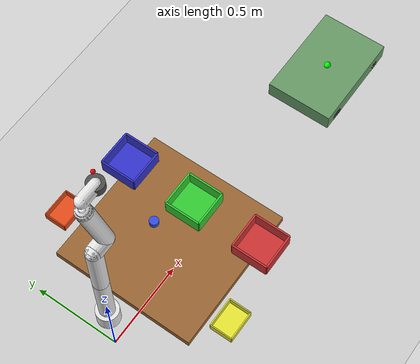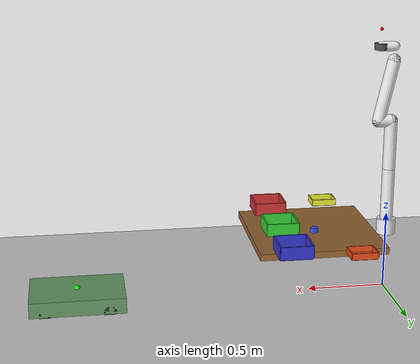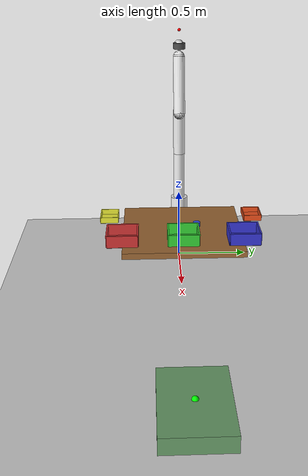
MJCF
<!--
  S1 Mixed Fleet Pick scene for PSL-Bench.
  Panda arm + AMR mobile base (2-DOF planar) + 3 bins + QA tray + isolation tray + blue gear.
  Frame convention: z-up, SI units (metres, radians, kg).
-->
<mujoco model="s1_mixed_fleet_pick">
  <option timestep="0.002" gravity="0 0 -9.81"/>
  <compiler angle="radian"/>

  <default>
    <joint damping="1.0" armature="0.1"/>
    <geom condim="4" friction="1 0.5 0.01"/>
  </default>

  <worldbody>
    <!-- Ground plane -->
    <geom name="floor" type="plane" size="5 5 0.1" rgba="0.8 0.8 0.8 1"/>

    <!-- Table for Panda arm -->
    <body name="table" pos="0.5 0 0.4">
      <geom name="table_top" type="box" size="0.4 0.4 0.02" rgba="0.6 0.4 0.2 1" mass="10"/>
    </body>

    <!-- Panda arm base -->
    <body name="panda_link0" pos="0 0 0.42">
      <geom name="link0_geom" type="cylinder" size="0.06 0.05" rgba="0.9 0.9 0.9 1" mass="2.0"/>
      <body name="panda_link1" pos="0 0 0.05">
        <joint name="joint_0" type="hinge" axis="0 0 1" range="-2.8973 2.8973" damping="10"/>
        <geom name="link1_geom" type="capsule" fromto="0 0 0 0 0 0.333" size="0.04" rgba="0.9 0.9 0.9 1" mass="2.0"/>
        <body name="panda_link2" pos="0 0 0.333">
          <joint name="joint_1" type="hinge" axis="0 1 0" range="-1.7628 1.7628" damping="10"/>
          <geom name="link2_geom" type="capsule" fromto="0 0 0 0 0 0.316" size="0.04" rgba="0.9 0.9 0.9 1" mass="2.0"/>
          <body name="panda_link3" pos="0 0 0.316">
            <joint name="joint_2" type="hinge" axis="0 0 1" range="-2.8973 2.8973" damping="10"/>
            <geom name="link3_geom" type="capsule" fromto="0 0 0 0.0825 0 0" size="0.04" rgba="0.9 0.9 0.9 1" mass="2.0"/>
            <body name="panda_link4" pos="0.0825 0 0">
              <joint name="joint_3" type="hinge" axis="0 -1 0" range="-3.0718 -0.0698" damping="10"/>
              <geom name="link4_geom" type="capsule" fromto="0 0 0 -0.0825 0 0.384" size="0.04" rgba="0.9 0.9 0.9 1" mass="2.0"/>
              <body name="panda_link5" pos="-0.0825 0 0.384">
                <joint name="joint_4" type="hinge" axis="0 0 1" range="-2.8973 2.8973" damping="10"/>
                <geom name="link5_geom" type="sphere" size="0.04" rgba="0.9 0.9 0.9 1" mass="1.0"/>
                <body name="panda_link6" pos="0 0 0.088">
                  <joint name="joint_5" type="hinge" axis="0 1 0" range="-0.0175 3.7525" damping="5"/>
                  <geom name="link6_geom" type="capsule" fromto="0 0 0 0.088 0 0" size="0.03" rgba="0.9 0.9 0.9 1" mass="1.0"/>
                  <body name="panda_link7" pos="0.088 0 0">
                    <joint name="joint_6" type="hinge" axis="0 0 1" range="-2.8973 2.8973" damping="2"/>
                    <geom name="link7_geom" type="cylinder" size="0.04 0.02" rgba="0.3 0.3 0.3 1" mass="0.5"/>
                    <site name="ee_site" pos="0 0 0.107" size="0.01" rgba="1 0 0 1"/>
                  </body>
                </body>
              </body>
            </body>
          </body>
        </body>
      </body>
    </body>

    <!-- AMR mobile base (2-DOF planar + yaw) -->
    <body name="amr_base_x" pos="2.0 0 0.05">
      <geom type="sphere" size="0.001" mass="1" rgba="0 0 0 0"/>
      <joint name="amr_slide_x" type="slide" axis="1 0 0" range="-5 5" damping="50"/>
      <body name="amr_base_y">
        <geom type="sphere" size="0.001" mass="1" rgba="0 0 0 0"/>
      <joint name="amr_slide_y" type="slide" axis="0 1 0" range="-5 5" damping="50"/>
        <body name="amr_base_yaw">
          <joint name="amr_hinge_yaw" type="hinge" axis="0 0 1" damping="20"/>
          <geom name="amr_chassis" type="box" size="0.3 0.2 0.05" rgba="0.4 0.6 0.4 1" mass="20"/>
          <geom name="amr_wheel_fl" type="cylinder" pos="0.2 0.18 -0.04" euler="1.5708 0 0" size="0.04 0.02" rgba="0.2 0.2 0.2 1" mass="0.5"/>
          <geom name="amr_wheel_fr" type="cylinder" pos="0.2 -0.18 -0.04" euler="1.5708 0 0" size="0.04 0.02" rgba="0.2 0.2 0.2 1" mass="0.5"/>
          <geom name="amr_wheel_rl" type="cylinder" pos="-0.2 0.18 -0.04" euler="1.5708 0 0" size="0.04 0.02" rgba="0.2 0.2 0.2 1" mass="0.5"/>
          <geom name="amr_wheel_rr" type="cylinder" pos="-0.2 -0.18 -0.04" euler="1.5708 0 0" size="0.04 0.02" rgba="0.2 0.2 0.2 1" mass="0.5"/>
          <site name="amr_center" pos="0 0 0.05" size="0.02" rgba="0 1 0 1"/>
        </body>
      </body>
    </body>

    <!-- Bin A -->
    <body name="bin_a" pos="0.7 -0.4 0.42">
      <geom name="bin_a_base" type="box" size="0.1 0.1 0.005" rgba="0.8 0.2 0.2 1" mass="0.5"/>
      <geom name="bin_a_wall_f" type="box" pos="0.1 0 0.04" size="0.005 0.1 0.04" rgba="0.8 0.2 0.2 1" mass="0.1"/>
      <geom name="bin_a_wall_b" type="box" pos="-0.1 0 0.04" size="0.005 0.1 0.04" rgba="0.8 0.2 0.2 1" mass="0.1"/>
      <geom name="bin_a_wall_l" type="box" pos="0 0.1 0.04" size="0.1 0.005 0.04" rgba="0.8 0.2 0.2 1" mass="0.1"/>
      <geom name="bin_a_wall_r" type="box" pos="0 -0.1 0.04" size="0.1 0.005 0.04" rgba="0.8 0.2 0.2 1" mass="0.1"/>
    </body>

    <!-- Bin B -->
    <body name="bin_b" pos="0.7 0.0 0.42">
      <geom name="bin_b_base" type="box" size="0.1 0.1 0.005" rgba="0.2 0.8 0.2 1" mass="0.5"/>
      <geom name="bin_b_wall_f" type="box" pos="0.1 0 0.04" size="0.005 0.1 0.04" rgba="0.2 0.8 0.2 1" mass="0.1"/>
      <geom name="bin_b_wall_b" type="box" pos="-0.1 0 0.04" size="0.005 0.1 0.04" rgba="0.2 0.8 0.2 1" mass="0.1"/>
      <geom name="bin_b_wall_l" type="box" pos="0 0.1 0.04" size="0.1 0.005 0.04" rgba="0.2 0.8 0.2 1" mass="0.1"/>
      <geom name="bin_b_wall_r" type="box" pos="0 -0.1 0.04" size="0.1 0.005 0.04" rgba="0.2 0.8 0.2 1" mass="0.1"/>
    </body>

    <!-- Bin C -->
    <body name="bin_c" pos="0.7 0.4 0.42">
      <geom name="bin_c_base" type="box" size="0.1 0.1 0.005" rgba="0.2 0.2 0.8 1" mass="0.5"/>
      <geom name="bin_c_wall_f" type="box" pos="0.1 0 0.04" size="0.005 0.1 0.04" rgba="0.2 0.2 0.8 1" mass="0.1"/>
      <geom name="bin_c_wall_b" type="box" pos="-0.1 0 0.04" size="0.005 0.1 0.04" rgba="0.2 0.2 0.8 1" mass="0.1"/>
      <geom name="bin_c_wall_l" type="box" pos="0 0.1 0.04" size="0.1 0.005 0.04" rgba="0.2 0.2 0.8 1" mass="0.1"/>
      <geom name="bin_c_wall_r" type="box" pos="0 -0.1 0.04" size="0.1 0.005 0.04" rgba="0.2 0.2 0.8 1" mass="0.1"/>
    </body>

    <!-- QA tray -->
    <body name="qa_tray" pos="0.3 -0.5 0.42">
      <geom name="qa_tray_base" type="box" size="0.08 0.06 0.003" rgba="0.9 0.9 0.2 1" mass="0.3"/>
      <geom name="qa_tray_wall_f" type="box" pos="0.08 0 0.02" size="0.003 0.06 0.02" rgba="0.9 0.9 0.2 1" mass="0.05"/>
      <geom name="qa_tray_wall_b" type="box" pos="-0.08 0 0.02" size="0.003 0.06 0.02" rgba="0.9 0.9 0.2 1" mass="0.05"/>
      <geom name="qa_tray_wall_l" type="box" pos="0 0.06 0.02" size="0.08 0.003 0.02" rgba="0.9 0.9 0.2 1" mass="0.05"/>
      <geom name="qa_tray_wall_r" type="box" pos="0 -0.06 0.02" size="0.08 0.003 0.02" rgba="0.9 0.9 0.2 1" mass="0.05"/>
    </body>

    <!-- Isolation tray -->
    <body name="isolation_tray" pos="0.3 0.5 0.42">
      <geom name="iso_tray_base" type="box" size="0.08 0.06 0.003" rgba="0.9 0.3 0.1 1" mass="0.3"/>
      <geom name="iso_tray_wall_f" type="box" pos="0.08 0 0.02" size="0.003 0.06 0.02" rgba="0.9 0.3 0.1 1" mass="0.05"/>
      <geom name="iso_tray_wall_b" type="box" pos="-0.08 0 0.02" size="0.003 0.06 0.02" rgba="0.9 0.3 0.1 1" mass="0.05"/>
      <geom name="iso_tray_wall_l" type="box" pos="0 0.06 0.02" size="0.08 0.003 0.02" rgba="0.9 0.3 0.1 1" mass="0.05"/>
      <geom name="iso_tray_wall_r" type="box" pos="0 -0.06 0.02" size="0.08 0.003 0.02" rgba="0.9 0.3 0.1 1" mass="0.05"/>
    </body>

    <!-- Blue gear (graspable) -->
    <body name="blue_gear" pos="0.5 0.1 0.45">
      <freejoint name="gear_free"/>
      <geom name="gear_geom" type="cylinder" size="0.025 0.015" rgba="0.2 0.3 0.9 1" mass="0.1"/>
    </body>
  </worldbody>

  <actuator>
    <!-- Panda arm actuators -->
    <position name="act_joint_0" joint="joint_0" kp="1000"/>
    <position name="act_joint_1" joint="joint_1" kp="1000"/>
    <position name="act_joint_2" joint="joint_2" kp="1000"/>
    <position name="act_joint_3" joint="joint_3" kp="1000"/>
    <position name="act_joint_4" joint="joint_4" kp="1000"/>
    <position name="act_joint_5" joint="joint_5" kp="1000"/>
    <position name="act_joint_6" joint="joint_6" kp="1000"/>
    <!-- AMR actuators -->
    <position name="act_amr_x" joint="amr_slide_x" kp="500"/>
    <position name="act_amr_y" joint="amr_slide_y" kp="500"/>
    <position name="act_amr_yaw" joint="amr_hinge_yaw" kp="200"/>
  </actuator>

  <sensor>
    <!-- Panda arm sensors -->
    <jointpos name="jpos_0" joint="joint_0"/>
    <jointpos name="jpos_1" joint="joint_1"/>
    <jointpos name="jpos_2" joint="joint_2"/>
    <jointpos name="jpos_3" joint="joint_3"/>
    <jointpos name="jpos_4" joint="joint_4"/>
    <jointpos name="jpos_5" joint="joint_5"/>
    <jointpos name="jpos_6" joint="joint_6"/>
    <jointvel name="jvel_0" joint="joint_0"/>
    <jointvel name="jvel_1" joint="joint_1"/>
    <jointvel name="jvel_2" joint="joint_2"/>
    <jointvel name="jvel_3" joint="joint_3"/>
    <jointvel name="jvel_4" joint="joint_4"/>
    <jointvel name="jvel_5" joint="joint_5"/>
    <jointvel name="jvel_6" joint="joint_6"/>
    <framepos name="ee_pos" objtype="site" objname="ee_site"/>
    <framequat name="ee_quat" objtype="site" objname="ee_site"/>
    <!-- AMR sensors -->
    <jointpos name="base_x" joint="amr_slide_x"/>
    <jointpos name="base_y" joint="amr_slide_y"/>
    <jointpos name="base_yaw" joint="amr_hinge_yaw"/>
  </sensor>
</mujoco>
